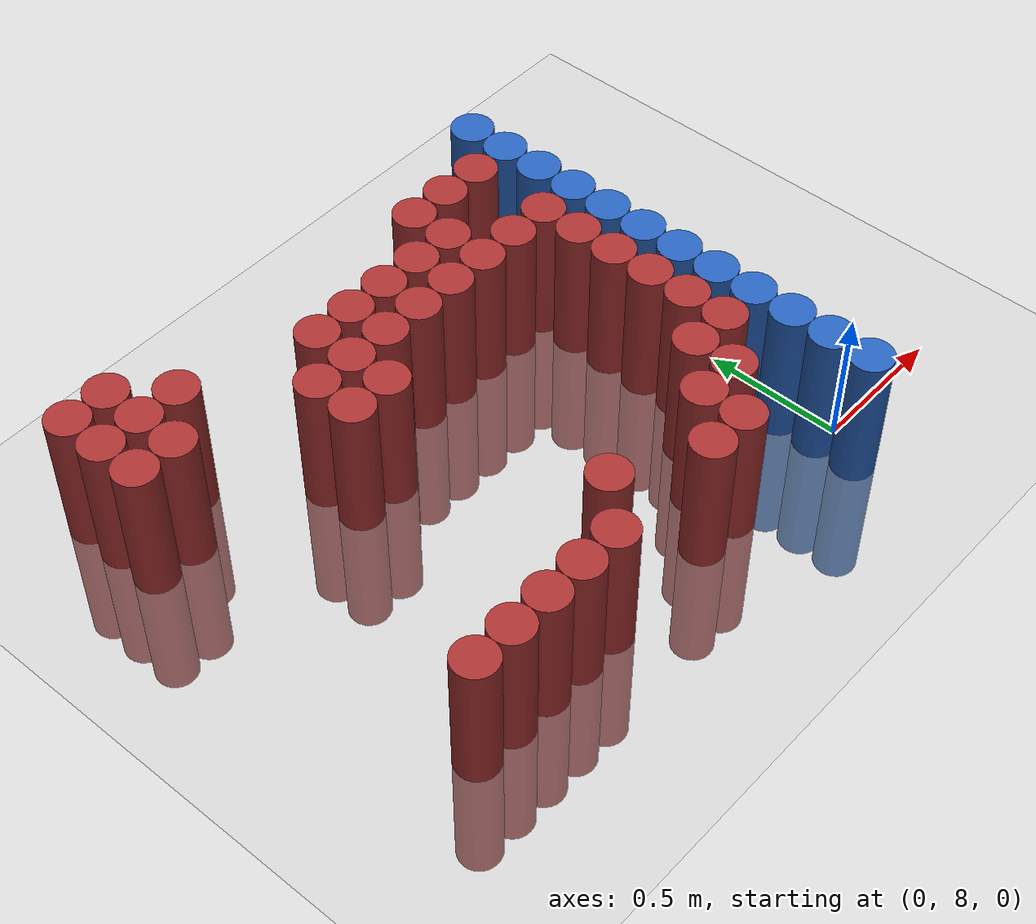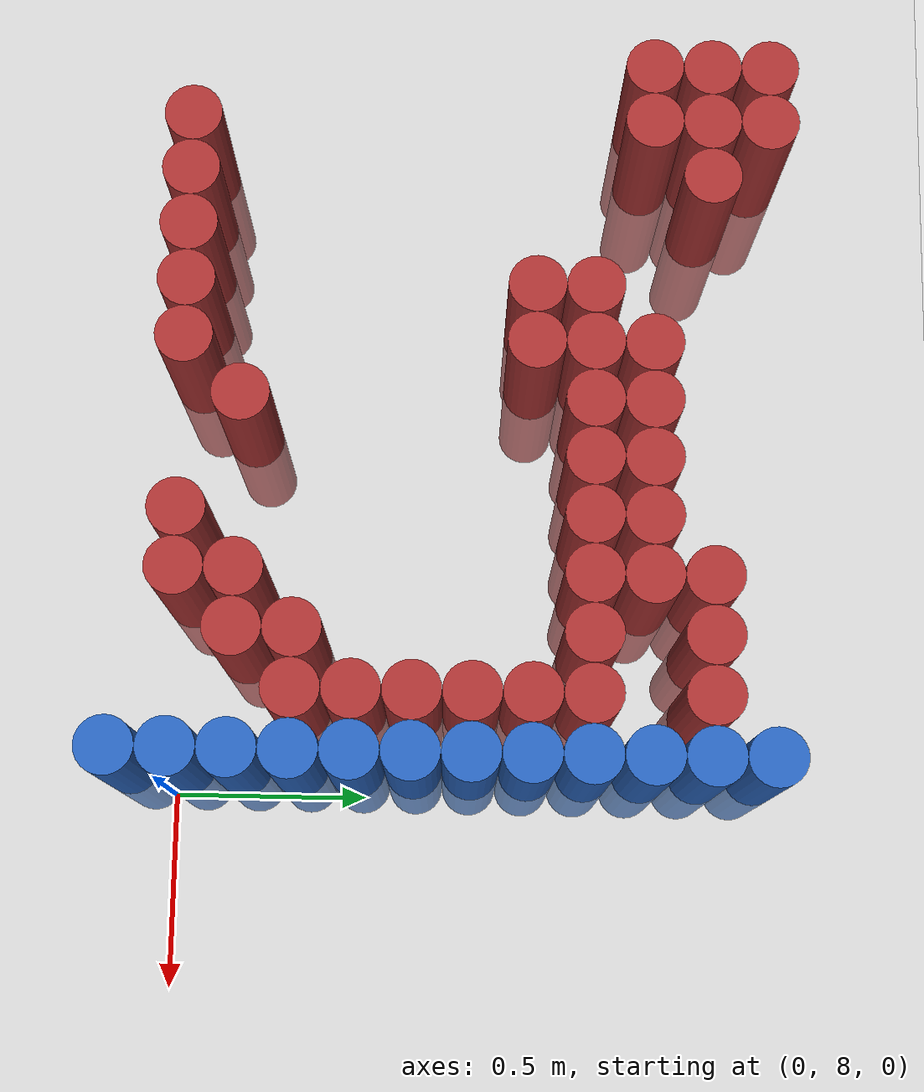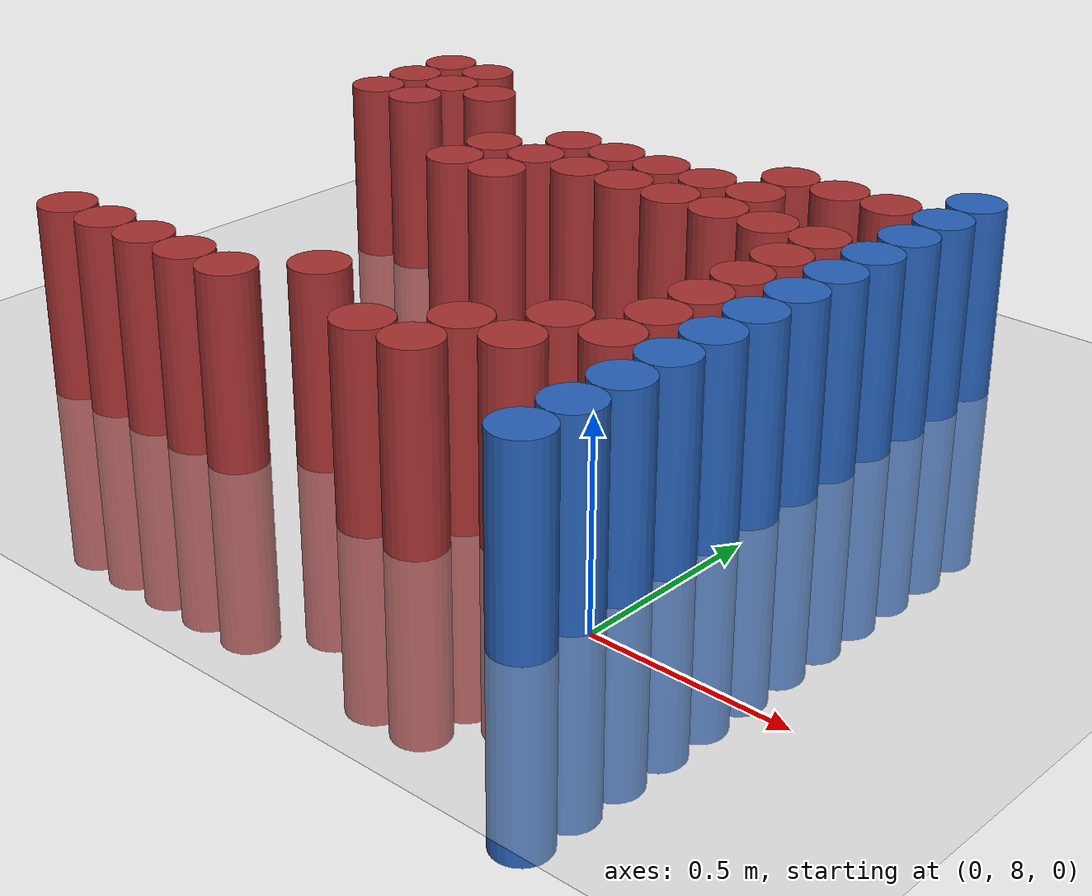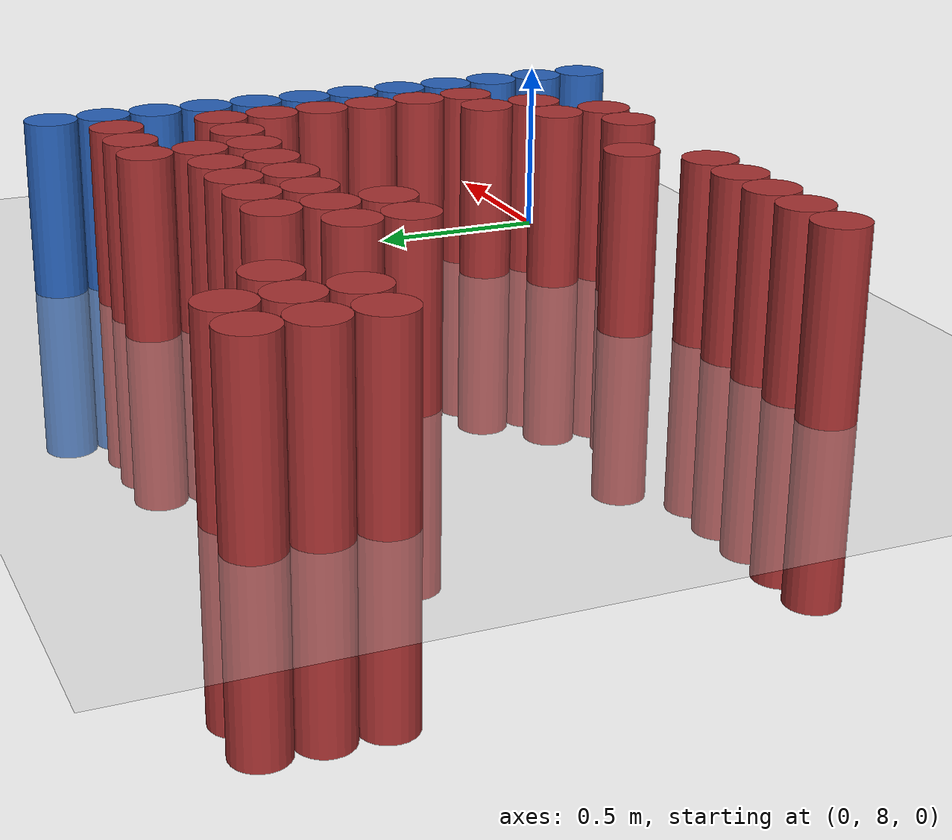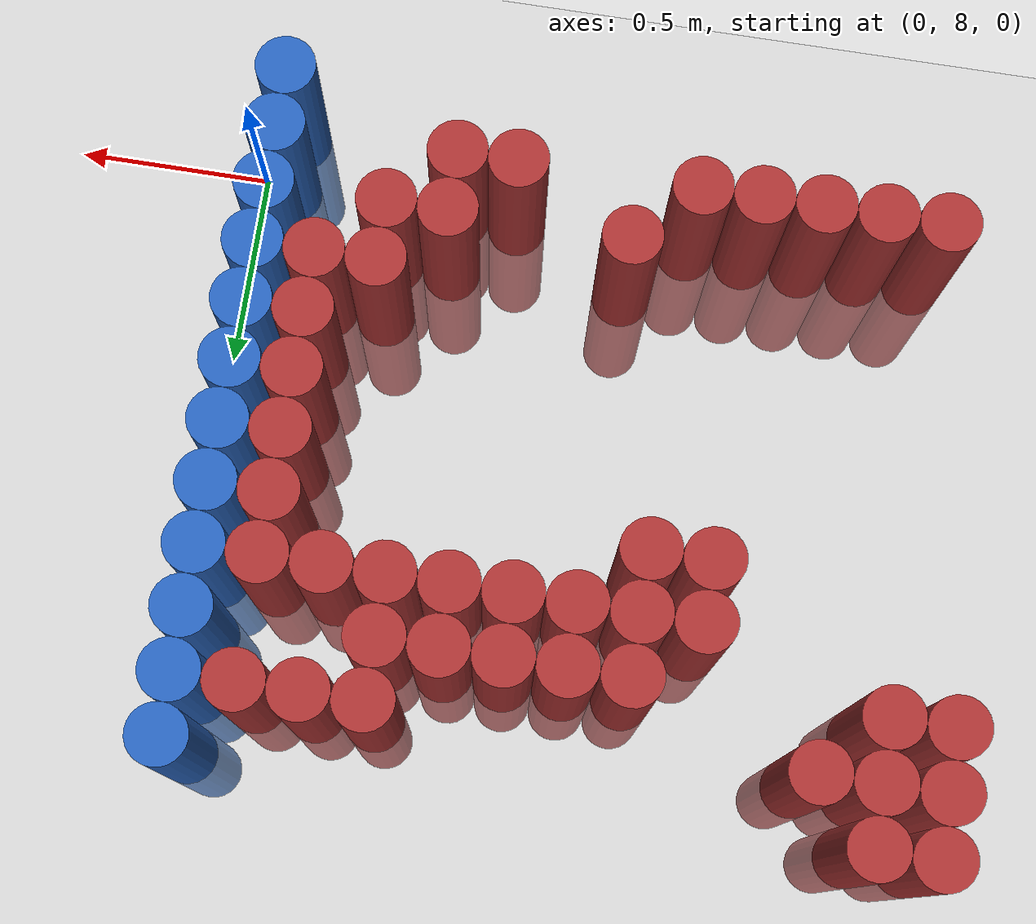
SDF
<sdf version="1.6">
 <world name="default">
  <model name="ground_plane">
   <static>1</static>
   <link name="link">
    <collision name="collision">
     <geometry><plane><normal>0 0 1</normal><size>100 100</size></plane></geometry>
     <surface><friction><ode><mu>100</mu><mu2>50</mu2></ode></friction></surface>
    </collision>
    <visual name="visual">
     <cast_shadows>0</cast_shadows>
     <geometry><plane><normal>0 0 1</normal><size>100 100</size></plane></geometry>
     <material>
      <script><uri>file://media/materials/scripts/gazebo.material</uri><name>Gazebo/Grey</name></script>
     </material>
    </visual>
   </link>
  </model>
  <model name="unit_cylinder_243">
   <static>1</static>
   <pose>-1.875000 9.225000 0.000000 0.000000 0.000000 0.000000</pose>
   <link name="link">
    <inertial>
     <mass>1</mass>
     <inertia><ixx>0.145833</ixx><ixy>0</ixy><ixz>0</ixz><iyy>0.145833</iyy><iyz>0</iyz><izz>0.125</izz></inertia>
    </inertial>
    <collision name="collision">
     <geometry><cylinder><radius>0.075000</radius><length>1</length></cylinder></geometry>
    </collision>
    <visual name="visual">
     <geometry><cylinder><radius>0.075000</radius><length>1</length></cylinder></geometry>
     <material>
      <ambient>0.648000 0.192000 0.192000 1</ambient>
      <diffuse>0.648000 0.192000 0.192000 1</diffuse>
     </material>
     <material>
      <script><name>Gazebo/Grey</name><uri>file://media/materials/scripts/gazebo.material</uri></script>
     </material>
    </visual>
   </link>
  </model>
  <model name="unit_cylinder_244">
   <static>1</static>
   <pose>-1.875000 9.375000 0.000000 0.000000 0.000000 0.000000</pose>
   <link name="link">
    <inertial>
     <mass>1</mass>
     <inertia><ixx>0.145833</ixx><ixy>0</ixy><ixz>0</ixz><iyy>0.145833</iyy><iyz>0</iyz><izz>0.125</izz></inertia>
    </inertial>
    <collision name="collision">
     <geometry><cylinder><radius>0.075000</radius><length>1</length></cylinder></geometry>
    </collision>
    <visual name="visual">
     <geometry><cylinder><radius>0.075000</radius><length>1</length></cylinder></geometry>
     <material>
      <ambient>0.648000 0.192000 0.192000 1</ambient>
      <diffuse>0.648000 0.192000 0.192000 1</diffuse>
     </material>
     <material>
      <script><name>Gazebo/Grey</name><uri>file://media/materials/scripts/gazebo.material</uri></script>
     </material>
    </visual>
   </link>
  </model>
  <model name="unit_cylinder_245">
   <static>1</static>
   <pose>-1.875000 9.525000 0.000000 0.000000 0.000000 0.000000</pose>
   <link name="link">
    <inertial>
     <mass>1</mass>
     <inertia><ixx>0.145833</ixx><ixy>0</ixy><ixz>0</ixz><iyy>0.145833</iyy><iyz>0</iyz><izz>0.125</izz></inertia>
    </inertial>
    <collision name="collision">
     <geometry><cylinder><radius>0.075000</radius><length>1</length></cylinder></geometry>
    </collision>
    <visual name="visual">
     <geometry><cylinder><radius>0.075000</radius><length>1</length></cylinder></geometry>
     <material>
      <ambient>0.648000 0.192000 0.192000 1</ambient>
      <diffuse>0.648000 0.192000 0.192000 1</diffuse>
     </material>
     <material>
      <script><name>Gazebo/Grey</name><uri>file://media/materials/scripts/gazebo.material</uri></script>
     </material>
    </visual>
   </link>
  </model>
  <model name="unit_cylinder_247">
   <static>1</static>
   <pose>-1.725000 8.025000 0.000000 0.000000 0.000000 0.000000</pose>
   <link name="link">
    <inertial>
     <mass>1</mass>
     <inertia><ixx>0.145833</ixx><ixy>0</ixy><ixz>0</ixz><iyy>0.145833</iyy><iyz>0</iyz><izz>0.125</izz></inertia>
    </inertial>
    <collision name="collision">
     <geometry><cylinder><radius>0.075000</radius><length>1</length></cylinder></geometry>
    </collision>
    <visual name="visual">
     <geometry><cylinder><radius>0.075000</radius><length>1</length></cylinder></geometry>
     <material>
      <ambient>0.648000 0.192000 0.192000 1</ambient>
      <diffuse>0.648000 0.192000 0.192000 1</diffuse>
     </material>
     <material>
      <script><name>Gazebo/Grey</name><uri>file://media/materials/scripts/gazebo.material</uri></script>
     </material>
    </visual>
   </link>
  </model>
  <model name="unit_cylinder_248">
   <static>1</static>
   <pose>-1.725000 9.225000 0.000000 0.000000 0.000000 0.000000</pose>
   <link name="link">
    <inertial>
     <mass>1</mass>
     <inertia><ixx>0.145833</ixx><ixy>0</ixy><ixz>0</ixz><iyy>0.145833</iyy><iyz>0</iyz><izz>0.125</izz></inertia>
    </inertial>
    <collision name="collision">
     <geometry><cylinder><radius>0.075000</radius><length>1</length></cylinder></geometry>
    </collision>
    <visual name="visual">
     <geometry><cylinder><radius>0.075000</radius><length>1</length></cylinder></geometry>
     <material>
      <ambient>0.648000 0.192000 0.192000 1</ambient>
      <diffuse>0.648000 0.192000 0.192000 1</diffuse>
     </material>
     <material>
      <script><name>Gazebo/Grey</name><uri>file://media/materials/scripts/gazebo.material</uri></script>
     </material>
    </visual>
   </link>
  </model>
  <model name="unit_cylinder_249">
   <static>1</static>
   <pose>-1.725000 9.375000 0.000000 0.000000 0.000000 0.000000</pose>
   <link name="link">
    <inertial>
     <mass>1</mass>
     <inertia><ixx>0.145833</ixx><ixy>0</ixy><ixz>0</ixz><iyy>0.145833</iyy><iyz>0</iyz><izz>0.125</izz></inertia>
    </inertial>
    <collision name="collision">
     <geometry><cylinder><radius>0.075000</radius><length>1</length></cylinder></geometry>
    </collision>
    <visual name="visual">
     <geometry><cylinder><radius>0.075000</radius><length>1</length></cylinder></geometry>
     <material>
      <ambient>0.648000 0.192000 0.192000 1</ambient>
      <diffuse>0.648000 0.192000 0.192000 1</diffuse>
     </material>
     <material>
      <script><name>Gazebo/Grey</name><uri>file://media/materials/scripts/gazebo.material</uri></script>
     </material>
    </visual>
   </link>
  </model>
  <model name="unit_cylinder_250">
   <static>1</static>
   <pose>-1.725000 9.525000 0.000000 0.000000 0.000000 0.000000</pose>
   <link name="link">
    <inertial>
     <mass>1</mass>
     <inertia><ixx>0.145833</ixx><ixy>0</ixy><ixz>0</ixz><iyy>0.145833</iyy><iyz>0</iyz><izz>0.125</izz></inertia>
    </inertial>
    <collision name="collision">
     <geometry><cylinder><radius>0.075000</radius><length>1</length></cylinder></geometry>
    </collision>
    <visual name="visual">
     <geometry><cylinder><radius>0.075000</radius><length>1</length></cylinder></geometry>
     <material>
      <ambient>0.648000 0.192000 0.192000 1</ambient>
      <diffuse>0.648000 0.192000 0.192000 1</diffuse>
     </material>
     <material>
      <script><name>Gazebo/Grey</name><uri>file://media/materials/scripts/gazebo.material</uri></script>
     </material>
    </visual>
   </link>
  </model>
  <model name="unit_cylinder_254">
   <static>1</static>
   <pose>-1.575000 8.025000 0.000000 0.000000 0.000000 0.000000</pose>
   <link name="link">
    <inertial>
     <mass>1</mass>
     <inertia><ixx>0.145833</ixx><ixy>0</ixy><ixz>0</ixz><iyy>0.145833</iyy><iyz>0</iyz><izz>0.125</izz></inertia>
    </inertial>
    <collision name="collision">
     <geometry><cylinder><radius>0.075000</radius><length>1</length></cylinder></geometry>
    </collision>
    <visual name="visual">
     <geometry><cylinder><radius>0.075000</radius><length>1</length></cylinder></geometry>
     <material>
      <ambient>0.648000 0.192000 0.192000 1</ambient>
      <diffuse>0.648000 0.192000 0.192000 1</diffuse>
     </material>
     <material>
      <script><name>Gazebo/Grey</name><uri>file://media/materials/scripts/gazebo.material</uri></script>
     </material>
    </visual>
   </link>
  </model>
  <model name="unit_cylinder_255">
   <static>1</static>
   <pose>-1.575000 9.375000 0.000000 0.000000 0.000000 0.000000</pose>
   <link name="link">
    <inertial>
     <mass>1</mass>
     <inertia><ixx>0.145833</ixx><ixy>0</ixy><ixz>0</ixz><iyy>0.145833</iyy><iyz>0</iyz><izz>0.125</izz></inertia>
    </inertial>
    <collision name="collision">
     <geometry><cylinder><radius>0.075000</radius><length>1</length></cylinder></geometry>
    </collision>
    <visual name="visual">
     <geometry><cylinder><radius>0.075000</radius><length>1</length></cylinder></geometry>
     <material>
      <ambient>0.648000 0.192000 0.192000 1</ambient>
      <diffuse>0.648000 0.192000 0.192000 1</diffuse>
     </material>
     <material>
      <script><name>Gazebo/Grey</name><uri>file://media/materials/scripts/gazebo.material</uri></script>
     </material>
    </visual>
   </link>
  </model>
  <model name="unit_cylinder_259">
   <static>1</static>
   <pose>-1.425000 8.025000 0.000000 0.000000 0.000000 0.000000</pose>
   <link name="link">
    <inertial>
     <mass>1</mass>
     <inertia><ixx>0.145833</ixx><ixy>0</ixy><ixz>0</ixz><iyy>0.145833</iyy><iyz>0</iyz><izz>0.125</izz></inertia>
    </inertial>
    <collision name="collision">
     <geometry><cylinder><radius>0.075000</radius><length>1</length></cylinder></geometry>
    </collision>
    <visual name="visual">
     <geometry><cylinder><radius>0.075000</radius><length>1</length></cylinder></geometry>
     <material>
      <ambient>0.648000 0.192000 0.192000 1</ambient>
      <diffuse>0.648000 0.192000 0.192000 1</diffuse>
     </material>
     <material>
      <script><name>Gazebo/Grey</name><uri>file://media/materials/scripts/gazebo.material</uri></script>
     </material>
    </visual>
   </link>
  </model>
  <model name="unit_cylinder_265">
   <static>1</static>
   <pose>-1.275000 8.025000 0.000000 0.000000 0.000000 0.000000</pose>
   <link name="link">
    <inertial>
     <mass>1</mass>
     <inertia><ixx>0.145833</ixx><ixy>0</ixy><ixz>0</ixz><iyy>0.145833</iyy><iyz>0</iyz><izz>0.125</izz></inertia>
    </inertial>
    <collision name="collision">
     <geometry><cylinder><radius>0.075000</radius><length>1</length></cylinder></geometry>
    </collision>
    <visual name="visual">
     <geometry><cylinder><radius>0.075000</radius><length>1</length></cylinder></geometry>
     <material>
      <ambient>0.648000 0.192000 0.192000 1</ambient>
      <diffuse>0.648000 0.192000 0.192000 1</diffuse>
     </material>
     <material>
      <script><name>Gazebo/Grey</name><uri>file://media/materials/scripts/gazebo.material</uri></script>
     </material>
    </visual>
   </link>
  </model>
  <model name="unit_cylinder_266">
   <static>1</static>
   <pose>-1.275000 8.925000 0.000000 0.000000 0.000000 0.000000</pose>
   <link name="link">
    <inertial>
     <mass>1</mass>
     <inertia><ixx>0.145833</ixx><ixy>0</ixy><ixz>0</ixz><iyy>0.145833</iyy><iyz>0</iyz><izz>0.125</izz></inertia>
    </inertial>
    <collision name="collision">
     <geometry><cylinder><radius>0.075000</radius><length>1</length></cylinder></geometry>
    </collision>
    <visual name="visual">
     <geometry><cylinder><radius>0.075000</radius><length>1</length></cylinder></geometry>
     <material>
      <ambient>0.648000 0.192000 0.192000 1</ambient>
      <diffuse>0.648000 0.192000 0.192000 1</diffuse>
     </material>
     <material>
      <script><name>Gazebo/Grey</name><uri>file://media/materials/scripts/gazebo.material</uri></script>
     </material>
    </visual>
   </link>
  </model>
  <model name="unit_cylinder_267">
   <static>1</static>
   <pose>-1.275000 9.075000 0.000000 0.000000 0.000000 0.000000</pose>
   <link name="link">
    <inertial>
     <mass>1</mass>
     <inertia><ixx>0.145833</ixx><ixy>0</ixy><ixz>0</ixz><iyy>0.145833</iyy><iyz>0</iyz><izz>0.125</izz></inertia>
    </inertial>
    <collision name="collision">
     <geometry><cylinder><radius>0.075000</radius><length>1</length></cylinder></geometry>
    </collision>
    <visual name="visual">
     <geometry><cylinder><radius>0.075000</radius><length>1</length></cylinder></geometry>
     <material>
      <ambient>0.648000 0.192000 0.192000 1</ambient>
      <diffuse>0.648000 0.192000 0.192000 1</diffuse>
     </material>
     <material>
      <script><name>Gazebo/Grey</name><uri>file://media/materials/scripts/gazebo.material</uri></script>
     </material>
    </visual>
   </link>
  </model>
  <model name="unit_cylinder_273">
   <static>1</static>
   <pose>-1.125000 8.025000 0.000000 0.000000 0.000000 0.000000</pose>
   <link name="link">
    <inertial>
     <mass>1</mass>
     <inertia><ixx>0.145833</ixx><ixy>0</ixy><ixz>0</ixz><iyy>0.145833</iyy><iyz>0</iyz><izz>0.125</izz></inertia>
    </inertial>
    <collision name="collision">
     <geometry><cylinder><radius>0.075000</radius><length>1</length></cylinder></geometry>
    </collision>
    <visual name="visual">
     <geometry><cylinder><radius>0.075000</radius><length>1</length></cylinder></geometry>
     <material>
      <ambient>0.648000 0.192000 0.192000 1</ambient>
      <diffuse>0.648000 0.192000 0.192000 1</diffuse>
     </material>
     <material>
      <script><name>Gazebo/Grey</name><uri>file://media/materials/scripts/gazebo.material</uri></script>
     </material>
    </visual>
   </link>
  </model>
  <model name="unit_cylinder_274">
   <static>1</static>
   <pose>-1.125000 8.925000 0.000000 0.000000 0.000000 0.000000</pose>
   <link name="link">
    <inertial>
     <mass>1</mass>
     <inertia><ixx>0.145833</ixx><ixy>0</ixy><ixz>0</ixz><iyy>0.145833</iyy><iyz>0</iyz><izz>0.125</izz></inertia>
    </inertial>
    <collision name="collision">
     <geometry><cylinder><radius>0.075000</radius><length>1</length></cylinder></geometry>
    </collision>
    <visual name="visual">
     <geometry><cylinder><radius>0.075000</radius><length>1</length></cylinder></geometry>
     <material>
      <ambient>0.648000 0.192000 0.192000 1</ambient>
      <diffuse>0.648000 0.192000 0.192000 1</diffuse>
     </material>
     <material>
      <script><name>Gazebo/Grey</name><uri>file://media/materials/scripts/gazebo.material</uri></script>
     </material>
    </visual>
   </link>
  </model>
  <model name="unit_cylinder_275">
   <static>1</static>
   <pose>-1.125000 9.075000 0.000000 0.000000 0.000000 0.000000</pose>
   <link name="link">
    <inertial>
     <mass>1</mass>
     <inertia><ixx>0.145833</ixx><ixy>0</ixy><ixz>0</ixz><iyy>0.145833</iyy><iyz>0</iyz><izz>0.125</izz></inertia>
    </inertial>
    <collision name="collision">
     <geometry><cylinder><radius>0.075000</radius><length>1</length></cylinder></geometry>
    </collision>
    <visual name="visual">
     <geometry><cylinder><radius>0.075000</radius><length>1</length></cylinder></geometry>
     <material>
      <ambient>0.648000 0.192000 0.192000 1</ambient>
      <diffuse>0.648000 0.192000 0.192000 1</diffuse>
     </material>
     <material>
      <script><name>Gazebo/Grey</name><uri>file://media/materials/scripts/gazebo.material</uri></script>
     </material>
    </visual>
   </link>
  </model>
  <model name="unit_cylinder_276">
   <static>1</static>
   <pose>-1.125000 9.225000 0.000000 0.000000 0.000000 0.000000</pose>
   <link name="link">
    <inertial>
     <mass>1</mass>
     <inertia><ixx>0.145833</ixx><ixy>0</ixy><ixz>0</ixz><iyy>0.145833</iyy><iyz>0</iyz><izz>0.125</izz></inertia>
    </inertial>
    <collision name="collision">
     <geometry><cylinder><radius>0.075000</radius><length>1</length></cylinder></geometry>
    </collision>
    <visual name="visual">
     <geometry><cylinder><radius>0.075000</radius><length>1</length></cylinder></geometry>
     <material>
      <ambient>0.648000 0.192000 0.192000 1</ambient>
      <diffuse>0.648000 0.192000 0.192000 1</diffuse>
     </material>
     <material>
      <script><name>Gazebo/Grey</name><uri>file://media/materials/scripts/gazebo.material</uri></script>
     </material>
    </visual>
   </link>
  </model>
  <model name="unit_cylinder_279">
   <static>1</static>
   <pose>-0.975000 8.175000 0.000000 0.000000 0.000000 0.000000</pose>
   <link name="link">
    <inertial>
     <mass>1</mass>
     <inertia><ixx>0.145833</ixx><ixy>0</ixy><ixz>0</ixz><iyy>0.145833</iyy><iyz>0</iyz><izz>0.125</izz></inertia>
    </inertial>
    <collision name="collision">
     <geometry><cylinder><radius>0.075000</radius><length>1</length></cylinder></geometry>
    </collision>
    <visual name="visual">
     <geometry><cylinder><radius>0.075000</radius><length>1</length></cylinder></geometry>
     <material>
      <ambient>0.648000 0.192000 0.192000 1</ambient>
      <diffuse>0.648000 0.192000 0.192000 1</diffuse>
     </material>
     <material>
      <script><name>Gazebo/Grey</name><uri>file://media/materials/scripts/gazebo.material</uri></script>
     </material>
    </visual>
   </link>
  </model>
  <model name="unit_cylinder_280">
   <static>1</static>
   <pose>-0.975000 9.075000 0.000000 0.000000 0.000000 0.000000</pose>
   <link name="link">
    <inertial>
     <mass>1</mass>
     <inertia><ixx>0.145833</ixx><ixy>0</ixy><ixz>0</ixz><iyy>0.145833</iyy><iyz>0</iyz><izz>0.125</izz></inertia>
    </inertial>
    <collision name="collision">
     <geometry><cylinder><radius>0.075000</radius><length>1</length></cylinder></geometry>
    </collision>
    <visual name="visual">
     <geometry><cylinder><radius>0.075000</radius><length>1</length></cylinder></geometry>
     <material>
      <ambient>0.648000 0.192000 0.192000 1</ambient>
      <diffuse>0.648000 0.192000 0.192000 1</diffuse>
     </material>
     <material>
      <script><name>Gazebo/Grey</name><uri>file://media/materials/scripts/gazebo.material</uri></script>
     </material>
    </visual>
   </link>
  </model>
  <model name="unit_cylinder_281">
   <static>1</static>
   <pose>-0.975000 9.225000 0.000000 0.000000 0.000000 0.000000</pose>
   <link name="link">
    <inertial>
     <mass>1</mass>
     <inertia><ixx>0.145833</ixx><ixy>0</ixy><ixz>0</ixz><iyy>0.145833</iyy><iyz>0</iyz><izz>0.125</izz></inertia>
    </inertial>
    <collision name="collision">
     <geometry><cylinder><radius>0.075000</radius><length>1</length></cylinder></geometry>
    </collision>
    <visual name="visual">
     <geometry><cylinder><radius>0.075000</radius><length>1</length></cylinder></geometry>
     <material>
      <ambient>0.648000 0.192000 0.192000 1</ambient>
      <diffuse>0.648000 0.192000 0.192000 1</diffuse>
     </material>
     <material>
      <script><name>Gazebo/Grey</name><uri>file://media/materials/scripts/gazebo.material</uri></script>
     </material>
    </visual>
   </link>
  </model>
  <model name="unit_cylinder_284">
   <static>1</static>
   <pose>-0.825000 9.075000 0.000000 0.000000 0.000000 0.000000</pose>
   <link name="link">
    <inertial>
     <mass>1</mass>
     <inertia><ixx>0.145833</ixx><ixy>0</ixy><ixz>0</ixz><iyy>0.145833</iyy><iyz>0</iyz><izz>0.125</izz></inertia>
    </inertial>
    <collision name="collision">
     <geometry><cylinder><radius>0.075000</radius><length>1</length></cylinder></geometry>
    </collision>
    <visual name="visual">
     <geometry><cylinder><radius>0.075000</radius><length>1</length></cylinder></geometry>
     <material>
      <ambient>0.648000 0.192000 0.192000 1</ambient>
      <diffuse>0.648000 0.192000 0.192000 1</diffuse>
     </material>
     <material>
      <script><name>Gazebo/Grey</name><uri>file://media/materials/scripts/gazebo.material</uri></script>
     </material>
    </visual>
   </link>
  </model>
  <model name="unit_cylinder_285">
   <static>1</static>
   <pose>-0.825000 9.225000 0.000000 0.000000 0.000000 0.000000</pose>
   <link name="link">
    <inertial>
     <mass>1</mass>
     <inertia><ixx>0.145833</ixx><ixy>0</ixy><ixz>0</ixz><iyy>0.145833</iyy><iyz>0</iyz><izz>0.125</izz></inertia>
    </inertial>
    <collision name="collision">
     <geometry><cylinder><radius>0.075000</radius><length>1</length></cylinder></geometry>
    </collision>
    <visual name="visual">
     <geometry><cylinder><radius>0.075000</radius><length>1</length></cylinder></geometry>
     <material>
      <ambient>0.648000 0.192000 0.192000 1</ambient>
      <diffuse>0.648000 0.192000 0.192000 1</diffuse>
     </material>
     <material>
      <script><name>Gazebo/Grey</name><uri>file://media/materials/scripts/gazebo.material</uri></script>
     </material>
    </visual>
   </link>
  </model>
  <model name="unit_cylinder_295">
   <static>1</static>
   <pose>-0.675000 8.025000 0.000000 0.000000 0.000000 0.000000</pose>
   <link name="link">
    <inertial>
     <mass>1</mass>
     <inertia><ixx>0.145833</ixx><ixy>0</ixy><ixz>0</ixz><iyy>0.145833</iyy><iyz>0</iyz><izz>0.125</izz></inertia>
    </inertial>
    <collision name="collision">
     <geometry><cylinder><radius>0.075000</radius><length>1</length></cylinder></geometry>
    </collision>
    <visual name="visual">
     <geometry><cylinder><radius>0.075000</radius><length>1</length></cylinder></geometry>
     <material>
      <ambient>0.648000 0.192000 0.192000 1</ambient>
      <diffuse>0.648000 0.192000 0.192000 1</diffuse>
     </material>
     <material>
      <script><name>Gazebo/Grey</name><uri>file://media/materials/scripts/gazebo.material</uri></script>
     </material>
    </visual>
   </link>
  </model>
  <model name="unit_cylinder_296">
   <static>1</static>
   <pose>-0.675000 9.075000 0.000000 0.000000 0.000000 0.000000</pose>
   <link name="link">
    <inertial>
     <mass>1</mass>
     <inertia><ixx>0.145833</ixx><ixy>0</ixy><ixz>0</ixz><iyy>0.145833</iyy><iyz>0</iyz><izz>0.125</izz></inertia>
    </inertial>
    <collision name="collision">
     <geometry><cylinder><radius>0.075000</radius><length>1</length></cylinder></geometry>
    </collision>
    <visual name="visual">
     <geometry><cylinder><radius>0.075000</radius><length>1</length></cylinder></geometry>
     <material>
      <ambient>0.648000 0.192000 0.192000 1</ambient>
      <diffuse>0.648000 0.192000 0.192000 1</diffuse>
     </material>
     <material>
      <script><name>Gazebo/Grey</name><uri>file://media/materials/scripts/gazebo.material</uri></script>
     </material>
    </visual>
   </link>
  </model>
  <model name="unit_cylinder_297">
   <static>1</static>
   <pose>-0.675000 9.225000 0.000000 0.000000 0.000000 0.000000</pose>
   <link name="link">
    <inertial>
     <mass>1</mass>
     <inertia><ixx>0.145833</ixx><ixy>0</ixy><ixz>0</ixz><iyy>0.145833</iyy><iyz>0</iyz><izz>0.125</izz></inertia>
    </inertial>
    <collision name="collision">
     <geometry><cylinder><radius>0.075000</radius><length>1</length></cylinder></geometry>
    </collision>
    <visual name="visual">
     <geometry><cylinder><radius>0.075000</radius><length>1</length></cylinder></geometry>
     <material>
      <ambient>0.648000 0.192000 0.192000 1</ambient>
      <diffuse>0.648000 0.192000 0.192000 1</diffuse>
     </material>
     <material>
      <script><name>Gazebo/Grey</name><uri>file://media/materials/scripts/gazebo.material</uri></script>
     </material>
    </visual>
   </link>
  </model>
  <model name="unit_cylinder_304">
   <static>1</static>
   <pose>-0.525000 8.025000 0.000000 0.000000 0.000000 0.000000</pose>
   <link name="link">
    <inertial>
     <mass>1</mass>
     <inertia><ixx>0.145833</ixx><ixy>0</ixy><ixz>0</ixz><iyy>0.145833</iyy><iyz>0</iyz><izz>0.125</izz></inertia>
    </inertial>
    <collision name="collision">
     <geometry><cylinder><radius>0.075000</radius><length>1</length></cylinder></geometry>
    </collision>
    <visual name="visual">
     <geometry><cylinder><radius>0.075000</radius><length>1</length></cylinder></geometry>
     <material>
      <ambient>0.648000 0.192000 0.192000 1</ambient>
      <diffuse>0.648000 0.192000 0.192000 1</diffuse>
     </material>
     <material>
      <script><name>Gazebo/Grey</name><uri>file://media/materials/scripts/gazebo.material</uri></script>
     </material>
    </visual>
   </link>
  </model>
  <model name="unit_cylinder_305">
   <static>1</static>
   <pose>-0.525000 8.175000 0.000000 0.000000 0.000000 0.000000</pose>
   <link name="link">
    <inertial>
     <mass>1</mass>
     <inertia><ixx>0.145833</ixx><ixy>0</ixy><ixz>0</ixz><iyy>0.145833</iyy><iyz>0</iyz><izz>0.125</izz></inertia>
    </inertial>
    <collision name="collision">
     <geometry><cylinder><radius>0.075000</radius><length>1</length></cylinder></geometry>
    </collision>
    <visual name="visual">
     <geometry><cylinder><radius>0.075000</radius><length>1</length></cylinder></geometry>
     <material>
      <ambient>0.648000 0.192000 0.192000 1</ambient>
      <diffuse>0.648000 0.192000 0.192000 1</diffuse>
     </material>
     <material>
      <script><name>Gazebo/Grey</name><uri>file://media/materials/scripts/gazebo.material</uri></script>
     </material>
    </visual>
   </link>
  </model>
  <model name="unit_cylinder_306">
   <static>1</static>
   <pose>-0.525000 9.075000 0.000000 0.000000 0.000000 0.000000</pose>
   <link name="link">
    <inertial>
     <mass>1</mass>
     <inertia><ixx>0.145833</ixx><ixy>0</ixy><ixz>0</ixz><iyy>0.145833</iyy><iyz>0</iyz><izz>0.125</izz></inertia>
    </inertial>
    <collision name="collision">
     <geometry><cylinder><radius>0.075000</radius><length>1</length></cylinder></geometry>
    </collision>
    <visual name="visual">
     <geometry><cylinder><radius>0.075000</radius><length>1</length></cylinder></geometry>
     <material>
      <ambient>0.648000 0.192000 0.192000 1</ambient>
      <diffuse>0.648000 0.192000 0.192000 1</diffuse>
     </material>
     <material>
      <script><name>Gazebo/Grey</name><uri>file://media/materials/scripts/gazebo.material</uri></script>
     </material>
    </visual>
   </link>
  </model>
  <model name="unit_cylinder_307">
   <static>1</static>
   <pose>-0.525000 9.225000 0.000000 0.000000 0.000000 0.000000</pose>
   <link name="link">
    <inertial>
     <mass>1</mass>
     <inertia><ixx>0.145833</ixx><ixy>0</ixy><ixz>0</ixz><iyy>0.145833</iyy><iyz>0</iyz><izz>0.125</izz></inertia>
    </inertial>
    <collision name="collision">
     <geometry><cylinder><radius>0.075000</radius><length>1</length></cylinder></geometry>
    </collision>
    <visual name="visual">
     <geometry><cylinder><radius>0.075000</radius><length>1</length></cylinder></geometry>
     <material>
      <ambient>0.648000 0.192000 0.192000 1</ambient>
      <diffuse>0.648000 0.192000 0.192000 1</diffuse>
     </material>
     <material>
      <script><name>Gazebo/Grey</name><uri>file://media/materials/scripts/gazebo.material</uri></script>
     </material>
    </visual>
   </link>
  </model>
  <model name="unit_cylinder_308">
   <static>1</static>
   <pose>-0.525000 9.375000 0.000000 0.000000 0.000000 0.000000</pose>
   <link name="link">
    <inertial>
     <mass>1</mass>
     <inertia><ixx>0.145833</ixx><ixy>0</ixy><ixz>0</ixz><iyy>0.145833</iyy><iyz>0</iyz><izz>0.125</izz></inertia>
    </inertial>
    <collision name="collision">
     <geometry><cylinder><radius>0.075000</radius><length>1</length></cylinder></geometry>
    </collision>
    <visual name="visual">
     <geometry><cylinder><radius>0.075000</radius><length>1</length></cylinder></geometry>
     <material>
      <ambient>0.648000 0.192000 0.192000 1</ambient>
      <diffuse>0.648000 0.192000 0.192000 1</diffuse>
     </material>
     <material>
      <script><name>Gazebo/Grey</name><uri>file://media/materials/scripts/gazebo.material</uri></script>
     </material>
    </visual>
   </link>
  </model>
  <model name="unit_cylinder_315">
   <static>1</static>
   <pose>-0.375000 8.175000 0.000000 0.000000 0.000000 0.000000</pose>
   <link name="link">
    <inertial>
     <mass>1</mass>
     <inertia><ixx>0.145833</ixx><ixy>0</ixy><ixz>0</ixz><iyy>0.145833</iyy><iyz>0</iyz><izz>0.125</izz></inertia>
    </inertial>
    <collision name="collision">
     <geometry><cylinder><radius>0.075000</radius><length>1</length></cylinder></geometry>
    </collision>
    <visual name="visual">
     <geometry><cylinder><radius>0.075000</radius><length>1</length></cylinder></geometry>
     <material>
      <ambient>0.648000 0.192000 0.192000 1</ambient>
      <diffuse>0.648000 0.192000 0.192000 1</diffuse>
     </material>
     <material>
      <script><name>Gazebo/Grey</name><uri>file://media/materials/scripts/gazebo.material</uri></script>
     </material>
    </visual>
   </link>
  </model>
  <model name="unit_cylinder_316">
   <static>1</static>
   <pose>-0.375000 8.325000 0.000000 0.000000 0.000000 0.000000</pose>
   <link name="link">
    <inertial>
     <mass>1</mass>
     <inertia><ixx>0.145833</ixx><ixy>0</ixy><ixz>0</ixz><iyy>0.145833</iyy><iyz>0</iyz><izz>0.125</izz></inertia>
    </inertial>
    <collision name="collision">
     <geometry><cylinder><radius>0.075000</radius><length>1</length></cylinder></geometry>
    </collision>
    <visual name="visual">
     <geometry><cylinder><radius>0.075000</radius><length>1</length></cylinder></geometry>
     <material>
      <ambient>0.648000 0.192000 0.192000 1</ambient>
      <diffuse>0.648000 0.192000 0.192000 1</diffuse>
     </material>
     <material>
      <script><name>Gazebo/Grey</name><uri>file://media/materials/scripts/gazebo.material</uri></script>
     </material>
    </visual>
   </link>
  </model>
  <model name="unit_cylinder_317">
   <static>1</static>
   <pose>-0.375000 9.075000 0.000000 0.000000 0.000000 0.000000</pose>
   <link name="link">
    <inertial>
     <mass>1</mass>
     <inertia><ixx>0.145833</ixx><ixy>0</ixy><ixz>0</ixz><iyy>0.145833</iyy><iyz>0</iyz><izz>0.125</izz></inertia>
    </inertial>
    <collision name="collision">
     <geometry><cylinder><radius>0.075000</radius><length>1</length></cylinder></geometry>
    </collision>
    <visual name="visual">
     <geometry><cylinder><radius>0.075000</radius><length>1</length></cylinder></geometry>
     <material>
      <ambient>0.648000 0.192000 0.192000 1</ambient>
      <diffuse>0.648000 0.192000 0.192000 1</diffuse>
     </material>
     <material>
      <script><name>Gazebo/Grey</name><uri>file://media/materials/scripts/gazebo.material</uri></script>
     </material>
    </visual>
   </link>
  </model>
  <model name="unit_cylinder_318">
   <static>1</static>
   <pose>-0.375000 9.375000 0.000000 0.000000 0.000000 0.000000</pose>
   <link name="link">
    <inertial>
     <mass>1</mass>
     <inertia><ixx>0.145833</ixx><ixy>0</ixy><ixz>0</ixz><iyy>0.145833</iyy><iyz>0</iyz><izz>0.125</izz></inertia>
    </inertial>
    <collision name="collision">
     <geometry><cylinder><radius>0.075000</radius><length>1</length></cylinder></geometry>
    </collision>
    <visual name="visual">
     <geometry><cylinder><radius>0.075000</radius><length>1</length></cylinder></geometry>
     <material>
      <ambient>0.648000 0.192000 0.192000 1</ambient>
      <diffuse>0.648000 0.192000 0.192000 1</diffuse>
     </material>
     <material>
      <script><name>Gazebo/Grey</name><uri>file://media/materials/scripts/gazebo.material</uri></script>
     </material>
    </visual>
   </link>
  </model>
  <model name="unit_cylinder_329">
   <static>1</static>
   <pose>-0.225000 8.325000 0.000000 0.000000 0.000000 0.000000</pose>
   <link name="link">
    <inertial>
     <mass>1</mass>
     <inertia><ixx>0.145833</ixx><ixy>0</ixy><ixz>0</ixz><iyy>0.145833</iyy><iyz>0</iyz><izz>0.125</izz></inertia>
    </inertial>
    <collision name="collision">
     <geometry><cylinder><radius>0.075000</radius><length>1</length></cylinder></geometry>
    </collision>
    <visual name="visual">
     <geometry><cylinder><radius>0.075000</radius><length>1</length></cylinder></geometry>
     <material>
      <ambient>0.648000 0.192000 0.192000 1</ambient>
      <diffuse>0.648000 0.192000 0.192000 1</diffuse>
     </material>
     <material>
      <script><name>Gazebo/Grey</name><uri>file://media/materials/scripts/gazebo.material</uri></script>
     </material>
    </visual>
   </link>
  </model>
  <model name="unit_cylinder_330">
   <static>1</static>
   <pose>-0.225000 8.475000 0.000000 0.000000 0.000000 0.000000</pose>
   <link name="link">
    <inertial>
     <mass>1</mass>
     <inertia><ixx>0.145833</ixx><ixy>0</ixy><ixz>0</ixz><iyy>0.145833</iyy><iyz>0</iyz><izz>0.125</izz></inertia>
    </inertial>
    <collision name="collision">
     <geometry><cylinder><radius>0.075000</radius><length>1</length></cylinder></geometry>
    </collision>
    <visual name="visual">
     <geometry><cylinder><radius>0.075000</radius><length>1</length></cylinder></geometry>
     <material>
      <ambient>0.648000 0.192000 0.192000 1</ambient>
      <diffuse>0.648000 0.192000 0.192000 1</diffuse>
     </material>
     <material>
      <script><name>Gazebo/Grey</name><uri>file://media/materials/scripts/gazebo.material</uri></script>
     </material>
    </visual>
   </link>
  </model>
  <model name="unit_cylinder_331">
   <static>1</static>
   <pose>-0.225000 8.625000 0.000000 0.000000 0.000000 0.000000</pose>
   <link name="link">
    <inertial>
     <mass>1</mass>
     <inertia><ixx>0.145833</ixx><ixy>0</ixy><ixz>0</ixz><iyy>0.145833</iyy><iyz>0</iyz><izz>0.125</izz></inertia>
    </inertial>
    <collision name="collision">
     <geometry><cylinder><radius>0.075000</radius><length>1</length></cylinder></geometry>
    </collision>
    <visual name="visual">
     <geometry><cylinder><radius>0.075000</radius><length>1</length></cylinder></geometry>
     <material>
      <ambient>0.648000 0.192000 0.192000 1</ambient>
      <diffuse>0.648000 0.192000 0.192000 1</diffuse>
     </material>
     <material>
      <script><name>Gazebo/Grey</name><uri>file://media/materials/scripts/gazebo.material</uri></script>
     </material>
    </visual>
   </link>
  </model>
  <model name="unit_cylinder_332">
   <static>1</static>
   <pose>-0.225000 8.775000 0.000000 0.000000 0.000000 0.000000</pose>
   <link name="link">
    <inertial>
     <mass>1</mass>
     <inertia><ixx>0.145833</ixx><ixy>0</ixy><ixz>0</ixz><iyy>0.145833</iyy><iyz>0</iyz><izz>0.125</izz></inertia>
    </inertial>
    <collision name="collision">
     <geometry><cylinder><radius>0.075000</radius><length>1</length></cylinder></geometry>
    </collision>
    <visual name="visual">
     <geometry><cylinder><radius>0.075000</radius><length>1</length></cylinder></geometry>
     <material>
      <ambient>0.648000 0.192000 0.192000 1</ambient>
      <diffuse>0.648000 0.192000 0.192000 1</diffuse>
     </material>
     <material>
      <script><name>Gazebo/Grey</name><uri>file://media/materials/scripts/gazebo.material</uri></script>
     </material>
    </visual>
   </link>
  </model>
  <model name="unit_cylinder_333">
   <static>1</static>
   <pose>-0.225000 8.925000 0.000000 0.000000 0.000000 0.000000</pose>
   <link name="link">
    <inertial>
     <mass>1</mass>
     <inertia><ixx>0.145833</ixx><ixy>0</ixy><ixz>0</ixz><iyy>0.145833</iyy><iyz>0</iyz><izz>0.125</izz></inertia>
    </inertial>
    <collision name="collision">
     <geometry><cylinder><radius>0.075000</radius><length>1</length></cylinder></geometry>
    </collision>
    <visual name="visual">
     <geometry><cylinder><radius>0.075000</radius><length>1</length></cylinder></geometry>
     <material>
      <ambient>0.648000 0.192000 0.192000 1</ambient>
      <diffuse>0.648000 0.192000 0.192000 1</diffuse>
     </material>
     <material>
      <script><name>Gazebo/Grey</name><uri>file://media/materials/scripts/gazebo.material</uri></script>
     </material>
    </visual>
   </link>
  </model>
  <model name="unit_cylinder_334">
   <static>1</static>
   <pose>-0.225000 9.075000 0.000000 0.000000 0.000000 0.000000</pose>
   <link name="link">
    <inertial>
     <mass>1</mass>
     <inertia><ixx>0.145833</ixx><ixy>0</ixy><ixz>0</ixz><iyy>0.145833</iyy><iyz>0</iyz><izz>0.125</izz></inertia>
    </inertial>
    <collision name="collision">
     <geometry><cylinder><radius>0.075000</radius><length>1</length></cylinder></geometry>
    </collision>
    <visual name="visual">
     <geometry><cylinder><radius>0.075000</radius><length>1</length></cylinder></geometry>
     <material>
      <ambient>0.648000 0.192000 0.192000 1</ambient>
      <diffuse>0.648000 0.192000 0.192000 1</diffuse>
     </material>
     <material>
      <script><name>Gazebo/Grey</name><uri>file://media/materials/scripts/gazebo.material</uri></script>
     </material>
    </visual>
   </link>
  </model>
  <model name="unit_cylinder_335">
   <static>1</static>
   <pose>-0.225000 9.375000 0.000000 0.000000 0.000000 0.000000</pose>
   <link name="link">
    <inertial>
     <mass>1</mass>
     <inertia><ixx>0.145833</ixx><ixy>0</ixy><ixz>0</ixz><iyy>0.145833</iyy><iyz>0</iyz><izz>0.125</izz></inertia>
    </inertial>
    <collision name="collision">
     <geometry><cylinder><radius>0.075000</radius><length>1</length></cylinder></geometry>
    </collision>
    <visual name="visual">
     <geometry><cylinder><radius>0.075000</radius><length>1</length></cylinder></geometry>
     <material>
      <ambient>0.648000 0.192000 0.192000 1</ambient>
      <diffuse>0.648000 0.192000 0.192000 1</diffuse>
     </material>
     <material>
      <script><name>Gazebo/Grey</name><uri>file://media/materials/scripts/gazebo.material</uri></script>
     </material>
    </visual>
   </link>
  </model>
  <model name="unit_cylinder_354">
   <static>1</static>
   <pose>-0.075000 7.875000 0.000000 0.000000 0.000000 0.000000</pose>
   <link name="link">
    <inertial>
     <mass>1</mass>
     <inertia><ixx>0.145833</ixx><ixy>0</ixy><ixz>0</ixz><iyy>0.145833</iyy><iyz>0</iyz><izz>0.125</izz></inertia>
    </inertial>
    <collision name="collision">
     <geometry><cylinder><radius>0.075000</radius><length>1</length></cylinder></geometry>
    </collision>
    <visual name="visual">
     <geometry><cylinder><radius>0.075000</radius><length>1</length></cylinder></geometry>
     <material>
      <ambient>0.152000 0.379000 0.720000 1</ambient>
      <diffuse>0.152000 0.379000 0.720000 1</diffuse>
     </material>
     <material>
      <script><name>Gazebo/Grey</name><uri>file://media/materials/scripts/gazebo.material</uri></script>
     </material>
    </visual>
   </link>
  </model>
  <model name="unit_cylinder_355">
   <static>1</static>
   <pose>-0.075000 8.025000 0.000000 0.000000 0.000000 0.000000</pose>
   <link name="link">
    <inertial>
     <mass>1</mass>
     <inertia><ixx>0.145833</ixx><ixy>0</ixy><ixz>0</ixz><iyy>0.145833</iyy><iyz>0</iyz><izz>0.125</izz></inertia>
    </inertial>
    <collision name="collision">
     <geometry><cylinder><radius>0.075000</radius><length>1</length></cylinder></geometry>
    </collision>
    <visual name="visual">
     <geometry><cylinder><radius>0.075000</radius><length>1</length></cylinder></geometry>
     <material>
      <ambient>0.152000 0.379000 0.720000 1</ambient>
      <diffuse>0.152000 0.379000 0.720000 1</diffuse>
     </material>
     <material>
      <script><name>Gazebo/Grey</name><uri>file://media/materials/scripts/gazebo.material</uri></script>
     </material>
    </visual>
   </link>
  </model>
  <model name="unit_cylinder_356">
   <static>1</static>
   <pose>-0.075000 8.175000 0.000000 0.000000 0.000000 0.000000</pose>
   <link name="link">
    <inertial>
     <mass>1</mass>
     <inertia><ixx>0.145833</ixx><ixy>0</ixy><ixz>0</ixz><iyy>0.145833</iyy><iyz>0</iyz><izz>0.125</izz></inertia>
    </inertial>
    <collision name="collision">
     <geometry><cylinder><radius>0.075000</radius><length>1</length></cylinder></geometry>
    </collision>
    <visual name="visual">
     <geometry><cylinder><radius>0.075000</radius><length>1</length></cylinder></geometry>
     <material>
      <ambient>0.152000 0.379000 0.720000 1</ambient>
      <diffuse>0.152000 0.379000 0.720000 1</diffuse>
     </material>
     <material>
      <script><name>Gazebo/Grey</name><uri>file://media/materials/scripts/gazebo.material</uri></script>
     </material>
    </visual>
   </link>
  </model>
  <model name="unit_cylinder_357">
   <static>1</static>
   <pose>-0.075000 8.325000 0.000000 0.000000 0.000000 0.000000</pose>
   <link name="link">
    <inertial>
     <mass>1</mass>
     <inertia><ixx>0.145833</ixx><ixy>0</ixy><ixz>0</ixz><iyy>0.145833</iyy><iyz>0</iyz><izz>0.125</izz></inertia>
    </inertial>
    <collision name="collision">
     <geometry><cylinder><radius>0.075000</radius><length>1</length></cylinder></geometry>
    </collision>
    <visual name="visual">
     <geometry><cylinder><radius>0.075000</radius><length>1</length></cylinder></geometry>
     <material>
      <ambient>0.152000 0.379000 0.720000 1</ambient>
      <diffuse>0.152000 0.379000 0.720000 1</diffuse>
     </material>
     <material>
      <script><name>Gazebo/Grey</name><uri>file://media/materials/scripts/gazebo.material</uri></script>
     </material>
    </visual>
   </link>
  </model>
  <model name="unit_cylinder_358">
   <static>1</static>
   <pose>-0.075000 8.475000 0.000000 0.000000 0.000000 0.000000</pose>
   <link name="link">
    <inertial>
     <mass>1</mass>
     <inertia><ixx>0.145833</ixx><ixy>0</ixy><ixz>0</ixz><iyy>0.145833</iyy><iyz>0</iyz><izz>0.125</izz></inertia>
    </inertial>
    <collision name="collision">
     <geometry><cylinder><radius>0.075000</radius><length>1</length></cylinder></geometry>
    </collision>
    <visual name="visual">
     <geometry><cylinder><radius>0.075000</radius><length>1</length></cylinder></geometry>
     <material>
      <ambient>0.152000 0.379000 0.720000 1</ambient>
      <diffuse>0.152000 0.379000 0.720000 1</diffuse>
     </material>
     <material>
      <script><name>Gazebo/Grey</name><uri>file://media/materials/scripts/gazebo.material</uri></script>
     </material>
    </visual>
   </link>
  </model>
  <model name="unit_cylinder_359">
   <static>1</static>
   <pose>-0.075000 8.625000 0.000000 0.000000 0.000000 0.000000</pose>
   <link name="link">
    <inertial>
     <mass>1</mass>
     <inertia><ixx>0.145833</ixx><ixy>0</ixy><ixz>0</ixz><iyy>0.145833</iyy><iyz>0</iyz><izz>0.125</izz></inertia>
    </inertial>
    <collision name="collision">
     <geometry><cylinder><radius>0.075000</radius><length>1</length></cylinder></geometry>
    </collision>
    <visual name="visual">
     <geometry><cylinder><radius>0.075000</radius><length>1</length></cylinder></geometry>
     <material>
      <ambient>0.152000 0.379000 0.720000 1</ambient>
      <diffuse>0.152000 0.379000 0.720000 1</diffuse>
     </material>
     <material>
      <script><name>Gazebo/Grey</name><uri>file://media/materials/scripts/gazebo.material</uri></script>
     </material>
    </visual>
   </link>
  </model>
  <model name="unit_cylinder_360">
   <static>1</static>
   <pose>-0.075000 8.775000 0.000000 0.000000 0.000000 0.000000</pose>
   <link name="link">
    <inertial>
     <mass>1</mass>
     <inertia><ixx>0.145833</ixx><ixy>0</ixy><ixz>0</ixz><iyy>0.145833</iyy><iyz>0</iyz><izz>0.125</izz></inertia>
    </inertial>
    <collision name="collision">
     <geometry><cylinder><radius>0.075000</radius><length>1</length></cylinder></geometry>
    </collision>
    <visual name="visual">
     <geometry><cylinder><radius>0.075000</radius><length>1</length></cylinder></geometry>
     <material>
      <ambient>0.152000 0.379000 0.720000 1</ambient>
      <diffuse>0.152000 0.379000 0.720000 1</diffuse>
     </material>
     <material>
      <script><name>Gazebo/Grey</name><uri>file://media/materials/scripts/gazebo.material</uri></script>
     </material>
    </visual>
   </link>
  </model>
  <model name="unit_cylinder_361">
   <static>1</static>
   <pose>-0.075000 8.925000 0.000000 0.000000 0.000000 0.000000</pose>
   <link name="link">
    <inertial>
     <mass>1</mass>
     <inertia><ixx>0.145833</ixx><ixy>0</ixy><ixz>0</ixz><iyy>0.145833</iyy><iyz>0</iyz><izz>0.125</izz></inertia>
    </inertial>
    <collision name="collision">
     <geometry><cylinder><radius>0.075000</radius><length>1</length></cylinder></geometry>
    </collision>
    <visual name="visual">
     <geometry><cylinder><radius>0.075000</radius><length>1</length></cylinder></geometry>
     <material>
      <ambient>0.152000 0.379000 0.720000 1</ambient>
      <diffuse>0.152000 0.379000 0.720000 1</diffuse>
     </material>
     <material>
      <script><name>Gazebo/Grey</name><uri>file://media/materials/scripts/gazebo.material</uri></script>
     </material>
    </visual>
   </link>
  </model>
  <model name="unit_cylinder_362">
   <static>1</static>
   <pose>-0.075000 9.075000 0.000000 0.000000 0.000000 0.000000</pose>
   <link name="link">
    <inertial>
     <mass>1</mass>
     <inertia><ixx>0.145833</ixx><ixy>0</ixy><ixz>0</ixz><iyy>0.145833</iyy><iyz>0</iyz><izz>0.125</izz></inertia>
    </inertial>
    <collision name="collision">
     <geometry><cylinder><radius>0.075000</radius><length>1</length></cylinder></geometry>
    </collision>
    <visual name="visual">
     <geometry><cylinder><radius>0.075000</radius><length>1</length></cylinder></geometry>
     <material>
      <ambient>0.152000 0.379000 0.720000 1</ambient>
      <diffuse>0.152000 0.379000 0.720000 1</diffuse>
     </material>
     <material>
      <script><name>Gazebo/Grey</name><uri>file://media/materials/scripts/gazebo.material</uri></script>
     </material>
    </visual>
   </link>
  </model>
  <model name="unit_cylinder_363">
   <static>1</static>
   <pose>-0.075000 9.225000 0.000000 0.000000 0.000000 0.000000</pose>
   <link name="link">
    <inertial>
     <mass>1</mass>
     <inertia><ixx>0.145833</ixx><ixy>0</ixy><ixz>0</ixz><iyy>0.145833</iyy><iyz>0</iyz><izz>0.125</izz></inertia>
    </inertial>
    <collision name="collision">
     <geometry><cylinder><radius>0.075000</radius><length>1</length></cylinder></geometry>
    </collision>
    <visual name="visual">
     <geometry><cylinder><radius>0.075000</radius><length>1</length></cylinder></geometry>
     <material>
      <ambient>0.152000 0.379000 0.720000 1</ambient>
      <diffuse>0.152000 0.379000 0.720000 1</diffuse>
     </material>
     <material>
      <script><name>Gazebo/Grey</name><uri>file://media/materials/scripts/gazebo.material</uri></script>
     </material>
    </visual>
   </link>
  </model>
  <model name="unit_cylinder_364">
   <static>1</static>
   <pose>-0.075000 9.375000 0.000000 0.000000 0.000000 0.000000</pose>
   <link name="link">
    <inertial>
     <mass>1</mass>
     <inertia><ixx>0.145833</ixx><ixy>0</ixy><ixz>0</ixz><iyy>0.145833</iyy><iyz>0</iyz><izz>0.125</izz></inertia>
    </inertial>
    <collision name="collision">
     <geometry><cylinder><radius>0.075000</radius><length>1</length></cylinder></geometry>
    </collision>
    <visual name="visual">
     <geometry><cylinder><radius>0.075000</radius><length>1</length></cylinder></geometry>
     <material>
      <ambient>0.152000 0.379000 0.720000 1</ambient>
      <diffuse>0.152000 0.379000 0.720000 1</diffuse>
     </material>
     <material>
      <script><name>Gazebo/Grey</name><uri>file://media/materials/scripts/gazebo.material</uri></script>
     </material>
    </visual>
   </link>
  </model>
  <model name="unit_cylinder_365">
   <static>1</static>
   <pose>-0.075000 9.525000 0.000000 0.000000 0.000000 0.000000</pose>
   <link name="link">
    <inertial>
     <mass>1</mass>
     <inertia><ixx>0.145833</ixx><ixy>0</ixy><ixz>0</ixz><iyy>0.145833</iyy><iyz>0</iyz><izz>0.125</izz></inertia>
    </inertial>
    <collision name="collision">
     <geometry><cylinder><radius>0.075000</radius><length>1</length></cylinder></geometry>
    </collision>
    <visual name="visual">
     <geometry><cylinder><radius>0.075000</radius><length>1</length></cylinder></geometry>
     <material>
      <ambient>0.152000 0.379000 0.720000 1</ambient>
      <diffuse>0.152000 0.379000 0.720000 1</diffuse>
     </material>
     <material>
      <script><name>Gazebo/Grey</name><uri>file://media/materials/scripts/gazebo.material</uri></script>
     </material>
    </visual>
   </link>
  </model>
 </world>
</sdf>
